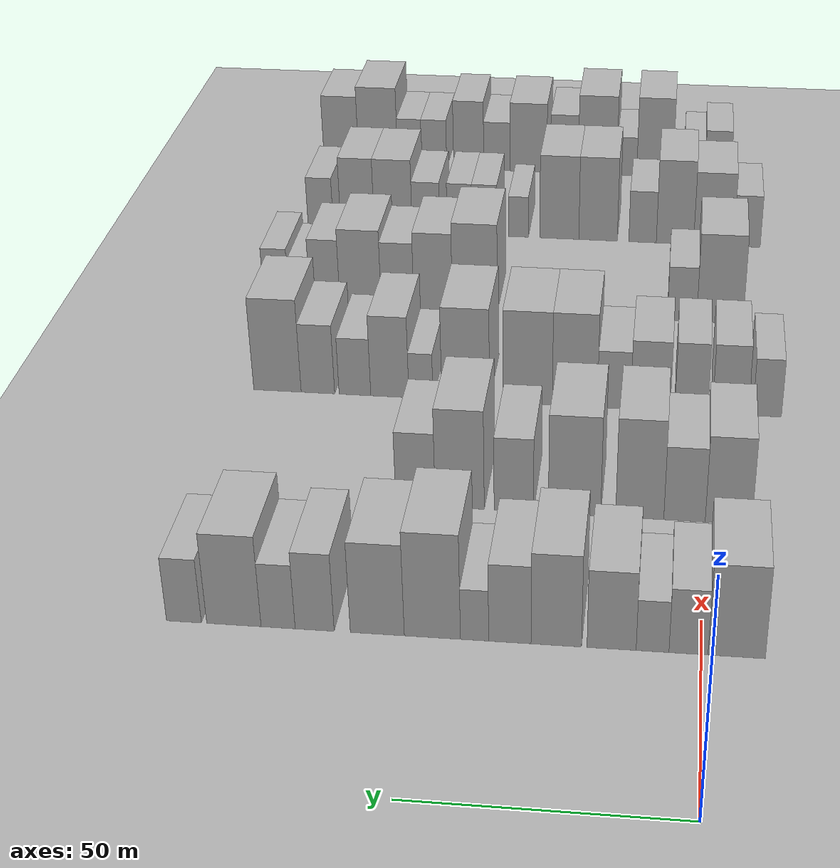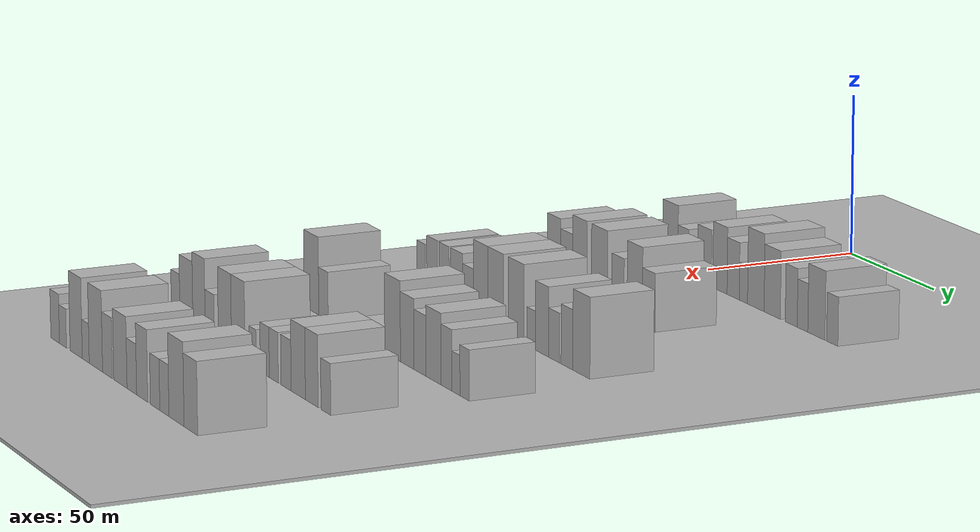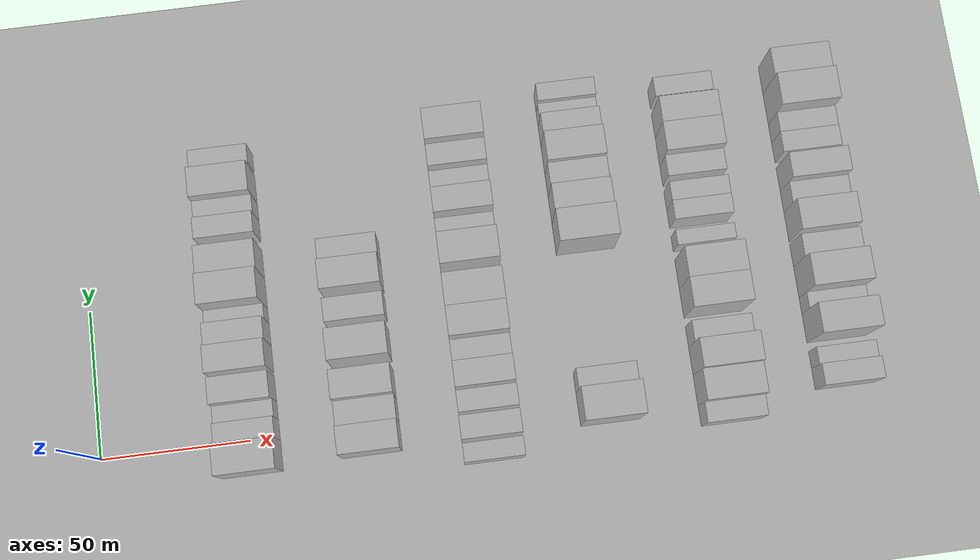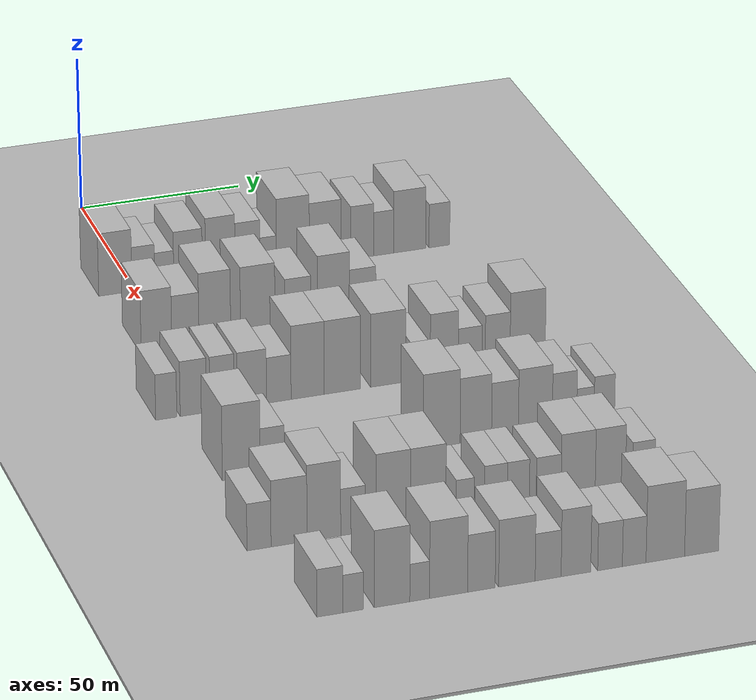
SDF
<sdf version="1.6">
 <world name="default">
  <include><name>ground_plane_1</name><uri>model://HANNAS_ground_plane</uri></include>
  <include>
   <name>ground_plane_2</name>
   <uri>model://HANNAS_ground_plane</uri>
   <pose>100 0 0  0 0 0</pose>
  </include>
  <model name="building_66">
   <static>1</static>
   <pose>50.0000 -6.2142 0 0.000000 0.000000 0.000000</pose>
   <link name="link">
    <pose>0 0 10.50 0 0 0</pose>
    <collision name="collision"><geometry><box><size>20.0000 10.2663 21.0000</size></box></geometry></collision>
    <visual name="visual">
     <cast_shadows>0</cast_shadows>
     <geometry><box><size>20.0000 10.2663 21.0000</size></box></geometry>
     <material>
      <script>
       <uri>model://HANNAS_wall/materials/scripts</uri>
       <uri>model://HANNAS_wall/materials/textures</uri>
       <name>vrc/HANNAS_wall</name>
      </script>
     </material>
    </visual>
   </link>
  </model>
  <model name="building_67">
   <static>1</static>
   <pose>50.0000 2.4209 0 0.000000 0.000000 0.000000</pose>
   <link name="link">
    <pose>0 0 7.50 0 0 0</pose>
    <collision name="collision"><geometry><box><size>20.0000 7.0039 15.0000</size></box></geometry></collision>
    <visual name="visual">
     <cast_shadows>0</cast_shadows>
     <geometry><box><size>20.0000 7.0039 15.0000</size></box></geometry>
     <material>
      <script>
       <uri>model://HANNAS_wall/materials/scripts</uri>
       <uri>model://HANNAS_wall/materials/textures</uri>
       <name>vrc/HANNAS_wall</name>
      </script>
     </material>
    </visual>
   </link>
  </model>
  <model name="building_68">
   <static>1</static>
   <pose>50.0000 8.8791 0 0.000000 0.000000 0.000000</pose>
   <link name="link">
    <pose>0 0 6.00 0 0 0</pose>
    <collision name="collision"><geometry><box><size>20.0000 5.9125 12.0000</size></box></geometry></collision>
    <visual name="visual">
     <cast_shadows>0</cast_shadows>
     <geometry><box><size>20.0000 5.9125 12.0000</size></box></geometry>
     <material>
      <script>
       <uri>model://HANNAS_wall/materials/scripts</uri>
       <uri>model://HANNAS_wall/materials/textures</uri>
       <name>vrc/HANNAS_wall</name>
      </script>
     </material>
    </visual>
   </link>
  </model>
  <model name="building_69">
   <static>1</static>
   <pose>50.0000 16.2761 0 0.000000 0.000000 0.000000</pose>
   <link name="link">
    <pose>0 0 9.00 0 0 0</pose>
    <collision name="collision"><geometry><box><size>20.0000 8.8816 18.0000</size></box></geometry></collision>
    <visual name="visual">
     <cast_shadows>0</cast_shadows>
     <geometry><box><size>20.0000 8.8816 18.0000</size></box></geometry>
     <material>
      <script>
       <uri>model://HANNAS_wall/materials/scripts</uri>
       <uri>model://HANNAS_wall/materials/textures</uri>
       <name>vrc/HANNAS_wall</name>
      </script>
     </material>
    </visual>
   </link>
  </model>
  <model name="building_70">
   <static>1</static>
   <pose>50.0000 26.3061 0 0.000000 0.000000 0.000000</pose>
   <link name="link">
    <pose>0 0 10.50 0 0 0</pose>
    <collision name="collision"><geometry><box><size>20.0000 9.1782 21.0000</size></box></geometry></collision>
    <visual name="visual">
     <cast_shadows>0</cast_shadows>
     <geometry><box><size>20.0000 9.1782 21.0000</size></box></geometry>
     <material>
      <script>
       <uri>model://HANNAS_wall/materials/scripts</uri>
       <uri>model://HANNAS_wall/materials/textures</uri>
       <name>vrc/HANNAS_wall</name>
      </script>
     </material>
    </visual>
   </link>
  </model>
  <model name="building_71">
   <static>1</static>
   <pose>50.0000 34.7607 0 0.000000 0.000000 0.000000</pose>
   <link name="link">
    <pose>0 0 9.00 0 0 0</pose>
    <collision name="collision"><geometry><box><size>20.0000 7.7310 18.0000</size></box></geometry></collision>
    <visual name="visual">
     <cast_shadows>0</cast_shadows>
     <geometry><box><size>20.0000 7.7310 18.0000</size></box></geometry>
     <material>
      <script>
       <uri>model://HANNAS_wall/materials/scripts</uri>
       <uri>model://HANNAS_wall/materials/textures</uri>
       <name>vrc/HANNAS_wall</name>
      </script>
     </material>
    </visual>
   </link>
  </model>
  <model name="building_72">
   <static>1</static>
   <pose>50.0000 41.2127 0 0.000000 0.000000 0.000000</pose>
   <link name="link">
    <pose>0 0 6.00 0 0 0</pose>
    <collision name="collision"><geometry><box><size>20.0000 5.1731 12.0000</size></box></geometry></collision>
    <visual name="visual">
     <cast_shadows>0</cast_shadows>
     <geometry><box><size>20.0000 5.1731 12.0000</size></box></geometry>
     <material>
      <script>
       <uri>model://HANNAS_wall/materials/scripts</uri>
       <uri>model://HANNAS_wall/materials/textures</uri>
       <name>vrc/HANNAS_wall</name>
      </script>
     </material>
    </visual>
   </link>
  </model>
  <model name="building_73">
   <static>1</static>
   <pose>50.0000 48.9597 0 0.000000 0.000000 0.000000</pose>
   <link name="link">
    <pose>0 0 12.00 0 0 0</pose>
    <collision name="collision"><geometry><box><size>20.0000 10.3208 24.0000</size></box></geometry></collision>
    <visual name="visual">
     <cast_shadows>0</cast_shadows>
     <geometry><box><size>20.0000 10.3208 24.0000</size></box></geometry>
     <material>
      <script>
       <uri>model://HANNAS_wall/materials/scripts</uri>
       <uri>model://HANNAS_wall/materials/textures</uri>
       <name>vrc/HANNAS_wall</name>
      </script>
     </material>
    </visual>
   </link>
  </model>
  <model name="building_74">
   <static>1</static>
   <pose>50.0000 59.1140 0 0.000000 0.000000 0.000000</pose>
   <link name="link">
    <pose>0 0 10.50 0 0 0</pose>
    <collision name="collision"><geometry><box><size>20.0000 9.9876 21.0000</size></box></geometry></collision>
    <visual name="visual">
     <cast_shadows>0</cast_shadows>
     <geometry><box><size>20.0000 9.9876 21.0000</size></box></geometry>
     <material>
      <script>
       <uri>model://HANNAS_wall/materials/scripts</uri>
       <uri>model://HANNAS_wall/materials/textures</uri>
       <name>vrc/HANNAS_wall</name>
      </script>
     </material>
    </visual>
   </link>
  </model>
  <model name="building_75">
   <static>1</static>
   <pose>50.0000 70.7340 0 0.000000 0.000000 0.000000</pose>
   <link name="link">
    <pose>0 0 9.00 0 0 0</pose>
    <collision name="collision"><geometry><box><size>20.0000 7.2524 18.0000</size></box></geometry></collision>
    <visual name="visual">
     <cast_shadows>0</cast_shadows>
     <geometry><box><size>20.0000 7.2524 18.0000</size></box></geometry>
     <material>
      <script>
       <uri>model://HANNAS_wall/materials/scripts</uri>
       <uri>model://HANNAS_wall/materials/textures</uri>
       <name>vrc/HANNAS_wall</name>
      </script>
     </material>
    </visual>
   </link>
  </model>
  <model name="building_76">
   <static>1</static>
   <pose>50.0000 77.5407 0 0.000000 0.000000 0.000000</pose>
   <link name="link">
    <pose>0 0 7.50 0 0 0</pose>
    <collision name="collision"><geometry><box><size>20.0000 6.3612 15.0000</size></box></geometry></collision>
    <visual name="visual">
     <cast_shadows>0</cast_shadows>
     <geometry><box><size>20.0000 6.3612 15.0000</size></box></geometry>
     <material>
      <script>
       <uri>model://HANNAS_wall/materials/scripts</uri>
       <uri>model://HANNAS_wall/materials/textures</uri>
       <name>vrc/HANNAS_wall</name>
      </script>
     </material>
    </visual>
   </link>
  </model>
  <model name="building_77">
   <static>1</static>
   <pose>50.0000 85.8204 0 0.000000 0.000000 0.000000</pose>
   <link name="link">
    <pose>0 0 10.50 0 0 0</pose>
    <collision name="collision"><geometry><box><size>20.0000 10.1982 21.0000</size></box></geometry></collision>
    <visual name="visual">
     <cast_shadows>0</cast_shadows>
     <geometry><box><size>20.0000 10.1982 21.0000</size></box></geometry>
     <material>
      <script>
       <uri>model://HANNAS_wall/materials/scripts</uri>
       <uri>model://HANNAS_wall/materials/textures</uri>
       <name>vrc/HANNAS_wall</name>
      </script>
     </material>
    </visual>
   </link>
  </model>
  <model name="building_78">
   <static>1</static>
   <pose>50.0000 95.2017 0 0.000000 0.000000 0.000000</pose>
   <link name="link">
    <pose>0 0 7.50 0 0 0</pose>
    <collision name="collision"><geometry><box><size>20.0000 6.5644 15.0000</size></box></geometry></collision>
    <visual name="visual">
     <cast_shadows>0</cast_shadows>
     <geometry><box><size>20.0000 6.5644 15.0000</size></box></geometry>
     <material>
      <script>
       <uri>model://HANNAS_wall/materials/scripts</uri>
       <uri>model://HANNAS_wall/materials/textures</uri>
       <name>vrc/HANNAS_wall</name>
      </script>
     </material>
    </visual>
   </link>
  </model>
  <model name="building_208">
   <static>1</static>
   <pose>90.0000 -5.1040 0 0.000000 0.000000 0.000000</pose>
   <link name="link">
    <pose>0 0 10.50 0 0 0</pose>
    <collision name="collision"><geometry><box><size>20.0000 9.2687 21.0000</size></box></geometry></collision>
    <visual name="visual">
     <cast_shadows>0</cast_shadows>
     <geometry><box><size>20.0000 9.2687 21.0000</size></box></geometry>
     <material>
      <script>
       <uri>model://HANNAS_wall/materials/scripts</uri>
       <uri>model://HANNAS_wall/materials/textures</uri>
       <name>vrc/HANNAS_wall</name>
      </script>
     </material>
    </visual>
   </link>
  </model>
  <model name="building_209">
   <static>1</static>
   <pose>90.0000 3.6586 0 0.000000 0.000000 0.000000</pose>
   <link name="link">
    <pose>0 0 9.00 0 0 0</pose>
    <collision name="collision"><geometry><box><size>20.0000 8.2565 18.0000</size></box></geometry></collision>
    <visual name="visual">
     <cast_shadows>0</cast_shadows>
     <geometry><box><size>20.0000 8.2565 18.0000</size></box></geometry>
     <material>
      <script>
       <uri>model://HANNAS_wall/materials/scripts</uri>
       <uri>model://HANNAS_wall/materials/textures</uri>
       <name>vrc/HANNAS_wall</name>
      </script>
     </material>
    </visual>
   </link>
  </model>
  <model name="building_210">
   <static>1</static>
   <pose>90.0000 12.6011 0 0.000000 0.000000 0.000000</pose>
   <link name="link">
    <pose>0 0 12.00 0 0 0</pose>
    <collision name="collision"><geometry><box><size>20.0000 9.6284 24.0000</size></box></geometry></collision>
    <visual name="visual">
     <cast_shadows>0</cast_shadows>
     <geometry><box><size>20.0000 9.6284 24.0000</size></box></geometry>
     <material>
      <script>
       <uri>model://HANNAS_wall/materials/scripts</uri>
       <uri>model://HANNAS_wall/materials/textures</uri>
       <name>vrc/HANNAS_wall</name>
      </script>
     </material>
    </visual>
   </link>
  </model>
  <model name="building_211">
   <static>1</static>
   <pose>90.0000 25.6824 0 0.000000 0.000000 0.000000</pose>
   <link name="link">
    <pose>0 0 12.00 0 0 0</pose>
    <collision name="collision"><geometry><box><size>20.0000 10.5342 24.0000</size></box></geometry></collision>
    <visual name="visual">
     <cast_shadows>0</cast_shadows>
     <geometry><box><size>20.0000 10.5342 24.0000</size></box></geometry>
     <material>
      <script>
       <uri>model://HANNAS_wall/materials/scripts</uri>
       <uri>model://HANNAS_wall/materials/textures</uri>
       <name>vrc/HANNAS_wall</name>
      </script>
     </material>
    </visual>
   </link>
  </model>
  <model name="building_212">
   <static>1</static>
   <pose>90.0000 37.9362 0 0.000000 0.000000 0.000000</pose>
   <link name="link">
    <pose>0 0 9.00 0 0 0</pose>
    <collision name="collision"><geometry><box><size>20.0000 7.9736 18.0000</size></box></geometry></collision>
    <visual name="visual">
     <cast_shadows>0</cast_shadows>
     <geometry><box><size>20.0000 7.9736 18.0000</size></box></geometry>
     <material>
      <script>
       <uri>model://HANNAS_wall/materials/scripts</uri>
       <uri>model://HANNAS_wall/materials/textures</uri>
       <name>vrc/HANNAS_wall</name>
      </script>
     </material>
    </visual>
   </link>
  </model>
  <model name="building_213">
   <static>1</static>
   <pose>90.0000 48.9017 0 0.000000 0.000000 0.000000</pose>
   <link name="link">
    <pose>0 0 12.00 0 0 0</pose>
    <collision name="collision"><geometry><box><size>20.0000 9.9573 24.0000</size></box></geometry></collision>
    <visual name="visual">
     <cast_shadows>0</cast_shadows>
     <geometry><box><size>20.0000 9.9573 24.0000</size></box></geometry>
     <material>
      <script>
       <uri>model://HANNAS_wall/materials/scripts</uri>
       <uri>model://HANNAS_wall/materials/textures</uri>
       <name>vrc/HANNAS_wall</name>
      </script>
     </material>
    </visual>
   </link>
  </model>
  <model name="building_214">
   <static>1</static>
   <pose>90.0000 57.9060 0 0.000000 0.000000 0.000000</pose>
   <link name="link">
    <pose>0 0 9.00 0 0 0</pose>
    <collision name="collision"><geometry><box><size>20.0000 8.0514 18.0000</size></box></geometry></collision>
    <visual name="visual">
     <cast_shadows>0</cast_shadows>
     <geometry><box><size>20.0000 8.0514 18.0000</size></box></geometry>
     <material>
      <script>
       <uri>model://HANNAS_wall/materials/scripts</uri>
       <uri>model://HANNAS_wall/materials/textures</uri>
       <name>vrc/HANNAS_wall</name>
      </script>
     </material>
    </visual>
   </link>
  </model>
  <model name="building_345">
   <static>1</static>
   <pose>130.0000 -13.8316 0 0.000000 0.000000 0.000000</pose>
   <link name="link">
    <pose>0 0 7.50 0 0 0</pose>
    <collision name="collision"><geometry><box><size>20.0000 6.2564 15.0000</size></box></geometry></collision>
    <visual name="visual">
     <cast_shadows>0</cast_shadows>
     <geometry><box><size>20.0000 6.2564 15.0000</size></box></geometry>
     <material>
      <script>
       <uri>model://HANNAS_wall/materials/scripts</uri>
       <uri>model://HANNAS_wall/materials/textures</uri>
       <name>vrc/HANNAS_wall</name>
      </script>
     </material>
    </visual>
   </link>
  </model>
  <model name="building_346">
   <static>1</static>
   <pose>130.0000 -5.7993 0 0.000000 0.000000 0.000000</pose>
   <link name="link">
    <pose>0 0 9.00 0 0 0</pose>
    <collision name="collision"><geometry><box><size>20.0000 7.8081 18.0000</size></box></geometry></collision>
    <visual name="visual">
     <cast_shadows>0</cast_shadows>
     <geometry><box><size>20.0000 7.8081 18.0000</size></box></geometry>
     <material>
      <script>
       <uri>model://HANNAS_wall/materials/scripts</uri>
       <uri>model://HANNAS_wall/materials/textures</uri>
       <name>vrc/HANNAS_wall</name>
      </script>
     </material>
    </visual>
   </link>
  </model>
  <model name="building_347">
   <static>1</static>
   <pose>130.0000 2.7097 0 0.000000 0.000000 0.000000</pose>
   <link name="link">
    <pose>0 0 9.00 0 0 0</pose>
    <collision name="collision"><geometry><box><size>20.0000 7.2098 18.0000</size></box></geometry></collision>
    <visual name="visual">
     <cast_shadows>0</cast_shadows>
     <geometry><box><size>20.0000 7.2098 18.0000</size></box></geometry>
     <material>
      <script>
       <uri>model://HANNAS_wall/materials/scripts</uri>
       <uri>model://HANNAS_wall/materials/textures</uri>
       <name>vrc/HANNAS_wall</name>
      </script>
     </material>
    </visual>
   </link>
  </model>
  <model name="building_348">
   <static>1</static>
   <pose>130.0000 11.6475 0 0.000000 0.000000 0.000000</pose>
   <link name="link">
    <pose>0 0 9.00 0 0 0</pose>
    <collision name="collision"><geometry><box><size>20.0000 8.6658 18.0000</size></box></geometry></collision>
    <visual name="visual">
     <cast_shadows>0</cast_shadows>
     <geometry><box><size>20.0000 8.6658 18.0000</size></box></geometry>
     <material>
      <script>
       <uri>model://HANNAS_wall/materials/scripts</uri>
       <uri>model://HANNAS_wall/materials/textures</uri>
       <name>vrc/HANNAS_wall</name>
      </script>
     </material>
    </visual>
   </link>
  </model>
  <model name="building_349">
   <static>1</static>
   <pose>130.0000 19.6461 0 0.000000 0.000000 0.000000</pose>
   <link name="link">
    <pose>0 0 7.50 0 0 0</pose>
    <collision name="collision"><geometry><box><size>20.0000 7.3313 15.0000</size></box></geometry></collision>
    <visual name="visual">
     <cast_shadows>0</cast_shadows>
     <geometry><box><size>20.0000 7.3313 15.0000</size></box></geometry>
     <material>
      <script>
       <uri>model://HANNAS_wall/materials/scripts</uri>
       <uri>model://HANNAS_wall/materials/textures</uri>
       <name>vrc/HANNAS_wall</name>
      </script>
     </material>
    </visual>
   </link>
  </model>
  <model name="building_350">
   <static>1</static>
   <pose>130.0000 28.2954 0 0.000000 0.000000 0.000000</pose>
   <link name="link">
    <pose>0 0 12.00 0 0 0</pose>
    <collision name="collision"><geometry><box><size>20.0000 9.9672 24.0000</size></box></geometry></collision>
    <visual name="visual">
     <cast_shadows>0</cast_shadows>
     <geometry><box><size>20.0000 9.9672 24.0000</size></box></geometry>
     <material>
      <script>
       <uri>model://HANNAS_wall/materials/scripts</uri>
       <uri>model://HANNAS_wall/materials/textures</uri>
       <name>vrc/HANNAS_wall</name>
      </script>
     </material>
    </visual>
   </link>
  </model>
  <model name="building_351">
   <static>1</static>
   <pose>130.0000 38.7564 0 0.000000 0.000000 0.000000</pose>
   <link name="link">
    <pose>0 0 12.00 0 0 0</pose>
    <collision name="collision"><geometry><box><size>20.0000 10.9549 24.0000</size></box></geometry></collision>
    <visual name="visual">
     <cast_shadows>0</cast_shadows>
     <geometry><box><size>20.0000 10.9549 24.0000</size></box></geometry>
     <material>
      <script>
       <uri>model://HANNAS_wall/materials/scripts</uri>
       <uri>model://HANNAS_wall/materials/textures</uri>
       <name>vrc/HANNAS_wall</name>
      </script>
     </material>
    </visual>
   </link>
  </model>
  <model name="building_352">
   <static>1</static>
   <pose>130.0000 52.5645 0 0.000000 0.000000 0.000000</pose>
   <link name="link">
    <pose>0 0 12.00 0 0 0</pose>
    <collision name="collision"><geometry><box><size>20.0000 10.6612 24.0000</size></box></geometry></collision>
    <visual name="visual">
     <cast_shadows>0</cast_shadows>
     <geometry><box><size>20.0000 10.6612 24.0000</size></box></geometry>
     <material>
      <script>
       <uri>model://HANNAS_wall/materials/scripts</uri>
       <uri>model://HANNAS_wall/materials/textures</uri>
       <name>vrc/HANNAS_wall</name>
      </script>
     </material>
    </visual>
   </link>
  </model>
  <model name="building_353">
   <static>1</static>
   <pose>130.0000 62.5911 0 0.000000 0.000000 0.000000</pose>
   <link name="link">
    <pose>0 0 6.00 0 0 0</pose>
    <collision name="collision"><geometry><box><size>20.0000 5.3920 12.0000</size></box></geometry></collision>
    <visual name="visual">
     <cast_shadows>0</cast_shadows>
     <geometry><box><size>20.0000 5.3920 12.0000</size></box></geometry>
     <material>
      <script>
       <uri>model://HANNAS_wall/materials/scripts</uri>
       <uri>model://HANNAS_wall/materials/textures</uri>
       <name>vrc/HANNAS_wall</name>
      </script>
     </material>
    </visual>
   </link>
  </model>
  <model name="building_354">
   <static>1</static>
   <pose>130.0000 69.5810 0 0.000000 0.000000 0.000000</pose>
   <link name="link">
    <pose>0 0 10.50 0 0 0</pose>
    <collision name="collision"><geometry><box><size>20.0000 8.5878 21.0000</size></box></geometry></collision>
    <visual name="visual">
     <cast_shadows>0</cast_shadows>
     <geometry><box><size>20.0000 8.5878 21.0000</size></box></geometry>
     <material>
      <script>
       <uri>model://HANNAS_wall/materials/scripts</uri>
       <uri>model://HANNAS_wall/materials/textures</uri>
       <name>vrc/HANNAS_wall</name>
      </script>
     </material>
    </visual>
   </link>
  </model>
  <model name="building_355">
   <static>1</static>
   <pose>130.0000 77.4540 0 0.000000 0.000000 0.000000</pose>
   <link name="link">
    <pose>0 0 7.50 0 0 0</pose>
    <collision name="collision"><geometry><box><size>20.0000 7.1582 15.0000</size></box></geometry></collision>
    <visual name="visual">
     <cast_shadows>0</cast_shadows>
     <geometry><box><size>20.0000 7.1582 15.0000</size></box></geometry>
     <material>
      <script>
       <uri>model://HANNAS_wall/materials/scripts</uri>
       <uri>model://HANNAS_wall/materials/textures</uri>
       <name>vrc/HANNAS_wall</name>
      </script>
     </material>
    </visual>
   </link>
  </model>
  <model name="building_356">
   <static>1</static>
   <pose>130.0000 85.8312 0 0.000000 0.000000 0.000000</pose>
   <link name="link">
    <pose>0 0 9.00 0 0 0</pose>
    <collision name="collision"><geometry><box><size>20.0000 7.5961 18.0000</size></box></geometry></collision>
    <visual name="visual">
     <cast_shadows>0</cast_shadows>
     <geometry><box><size>20.0000 7.5961 18.0000</size></box></geometry>
     <material>
      <script>
       <uri>model://HANNAS_wall/materials/scripts</uri>
       <uri>model://HANNAS_wall/materials/textures</uri>
       <name>vrc/HANNAS_wall</name>
      </script>
     </material>
    </visual>
   </link>
  </model>
  <model name="building_357">
   <static>1</static>
   <pose>130.0000 95.0210 0 0.000000 0.000000 0.000000</pose>
   <link name="link">
    <pose>0 0 12.00 0 0 0</pose>
    <collision name="collision"><geometry><box><size>20.0000 10.7835 24.0000</size></box></geometry></collision>
    <visual name="visual">
     <cast_shadows>0</cast_shadows>
     <geometry><box><size>20.0000 10.7835 24.0000</size></box></geometry>
     <material>
      <script>
       <uri>model://HANNAS_wall/materials/scripts</uri>
       <uri>model://HANNAS_wall/materials/textures</uri>
       <name>vrc/HANNAS_wall</name>
      </script>
     </material>
    </visual>
   </link>
  </model>
  <model name="building_478">
   <static>1</static>
   <pose>170.0000 -3.7107 0 0.000000 0.000000 0.000000</pose>
   <link name="link">
    <pose>0 0 12.00 0 0 0</pose>
    <collision name="collision"><geometry><box><size>20.0000 11.0374 24.0000</size></box></geometry></collision>
    <visual name="visual">
     <cast_shadows>0</cast_shadows>
     <geometry><box><size>20.0000 11.0374 24.0000</size></box></geometry>
     <material>
      <script>
       <uri>model://HANNAS_wall/materials/scripts</uri>
       <uri>model://HANNAS_wall/materials/textures</uri>
       <name>vrc/HANNAS_wall</name>
      </script>
     </material>
    </visual>
   </link>
  </model>
  <model name="building_479">
   <static>1</static>
   <pose>170.0000 5.3019 0 0.000000 0.000000 0.000000</pose>
   <link name="link">
    <pose>0 0 7.50 0 0 0</pose>
    <collision name="collision"><geometry><box><size>20.0000 6.9877 15.0000</size></box></geometry></collision>
    <visual name="visual">
     <cast_shadows>0</cast_shadows>
     <geometry><box><size>20.0000 6.9877 15.0000</size></box></geometry>
     <material>
      <script>
       <uri>model://HANNAS_wall/materials/scripts</uri>
       <uri>model://HANNAS_wall/materials/textures</uri>
       <name>vrc/HANNAS_wall</name>
      </script>
     </material>
    </visual>
   </link>
  </model>
  <model name="building_480">
   <static>1</static>
   <pose>170.0000 55.1960 0 0.000000 0.000000 0.000000</pose>
   <link name="link">
    <pose>0 0 12.00 0 0 0</pose>
    <collision name="collision"><geometry><box><size>20.0000 10.9335 24.0000</size></box></geometry></collision>
    <visual name="visual">
     <cast_shadows>0</cast_shadows>
     <geometry><box><size>20.0000 10.9335 24.0000</size></box></geometry>
     <material>
      <script>
       <uri>model://HANNAS_wall/materials/scripts</uri>
       <uri>model://HANNAS_wall/materials/textures</uri>
       <name>vrc/HANNAS_wall</name>
      </script>
     </material>
    </visual>
   </link>
  </model>
  <model name="building_481">
   <static>1</static>
   <pose>170.0000 65.3570 0 0.000000 0.000000 0.000000</pose>
   <link name="link">
    <pose>0 0 10.50 0 0 0</pose>
    <collision name="collision"><geometry><box><size>20.0000 9.3886 21.0000</size></box></geometry></collision>
    <visual name="visual">
     <cast_shadows>0</cast_shadows>
     <geometry><box><size>20.0000 9.3886 21.0000</size></box></geometry>
     <material>
      <script>
       <uri>model://HANNAS_wall/materials/scripts</uri>
       <uri>model://HANNAS_wall/materials/textures</uri>
       <name>vrc/HANNAS_wall</name>
      </script>
     </material>
    </visual>
   </link>
  </model>
  <model name="building_482">
   <static>1</static>
   <pose>170.0000 74.0606 0 0.000000 0.000000 0.000000</pose>
   <link name="link">
    <pose>0 0 9.00 0 0 0</pose>
    <collision name="collision"><geometry><box><size>20.0000 8.0186 18.0000</size></box></geometry></collision>
    <visual name="visual">
     <cast_shadows>0</cast_shadows>
     <geometry><box><size>20.0000 8.0186 18.0000</size></box></geometry>
     <material>
      <script>
       <uri>model://HANNAS_wall/materials/scripts</uri>
       <uri>model://HANNAS_wall/materials/textures</uri>
       <name>vrc/HANNAS_wall</name>
      </script>
     </material>
    </visual>
   </link>
  </model>
  <model name="building_483">
   <static>1</static>
   <pose>170.0000 83.1466 0 0.000000 0.000000 0.000000</pose>
   <link name="link">
    <pose>0 0 10.50 0 0 0</pose>
    <collision name="collision"><geometry><box><size>20.0000 10.1533 21.0000</size></box></geometry></collision>
    <visual name="visual">
     <cast_shadows>0</cast_shadows>
     <geometry><box><size>20.0000 10.1533 21.0000</size></box></geometry>
     <material>
      <script>
       <uri>model://HANNAS_wall/materials/scripts</uri>
       <uri>model://HANNAS_wall/materials/textures</uri>
       <name>vrc/HANNAS_wall</name>
      </script>
     </material>
    </visual>
   </link>
  </model>
  <model name="building_484">
   <static>1</static>
   <pose>170.0000 91.8984 0 0.000000 0.000000 0.000000</pose>
   <link name="link">
    <pose>0 0 9.00 0 0 0</pose>
    <collision name="collision"><geometry><box><size>20.0000 7.3505 18.0000</size></box></geometry></collision>
    <visual name="visual">
     <cast_shadows>0</cast_shadows>
     <geometry><box><size>20.0000 7.3505 18.0000</size></box></geometry>
     <material>
      <script>
       <uri>model://HANNAS_wall/materials/scripts</uri>
       <uri>model://HANNAS_wall/materials/textures</uri>
       <name>vrc/HANNAS_wall</name>
      </script>
     </material>
    </visual>
   </link>
  </model>
  <model name="building_485">
   <static>1</static>
   <pose>170.0000 98.1914 0 0.000000 0.000000 0.000000</pose>
   <link name="link">
    <pose>0 0 6.00 0 0 0</pose>
    <collision name="collision"><geometry><box><size>20.0000 5.2354 12.0000</size></box></geometry></collision>
    <visual name="visual">
     <cast_shadows>0</cast_shadows>
     <geometry><box><size>20.0000 5.2354 12.0000</size></box></geometry>
     <material>
      <script>
       <uri>model://HANNAS_wall/materials/scripts</uri>
       <uri>model://HANNAS_wall/materials/textures</uri>
       <name>vrc/HANNAS_wall</name>
      </script>
     </material>
    </visual>
   </link>
  </model>
  <model name="building_486">
   <static>1</static>
   <pose>170.0000 103.9123 0 0.000000 0.000000 0.000000</pose>
   <link name="link">
    <pose>0 0 7.50 0 0 0</pose>
    <collision name="collision"><geometry><box><size>20.0000 6.2065 15.0000</size></box></geometry></collision>
    <visual name="visual">
     <cast_shadows>0</cast_shadows>
     <geometry><box><size>20.0000 6.2065 15.0000</size></box></geometry>
     <material>
      <script>
       <uri>model://HANNAS_wall/materials/scripts</uri>
       <uri>model://HANNAS_wall/materials/textures</uri>
       <name>vrc/HANNAS_wall</name>
      </script>
     </material>
    </visual>
   </link>
  </model>
  <model name="building_615">
   <static>1</static>
   <pose>210.0000 -10.8561 0 0.000000 0.000000 0.000000</pose>
   <link name="link">
    <pose>0 0 7.50 0 0 0</pose>
    <collision name="collision"><geometry><box><size>20.0000 6.8477 15.0000</size></box></geometry></collision>
    <visual name="visual">
     <cast_shadows>0</cast_shadows>
     <geometry><box><size>20.0000 6.8477 15.0000</size></box></geometry>
     <material>
      <script>
       <uri>model://HANNAS_wall/materials/scripts</uri>
       <uri>model://HANNAS_wall/materials/textures</uri>
       <name>vrc/HANNAS_wall</name>
      </script>
     </material>
    </visual>
   </link>
  </model>
  <model name="building_616">
   <static>1</static>
   <pose>210.0000 -2.2864 0 0.000000 0.000000 0.000000</pose>
   <link name="link">
    <pose>0 0 10.50 0 0 0</pose>
    <collision name="collision"><geometry><box><size>20.0000 10.2918 21.0000</size></box></geometry></collision>
    <visual name="visual">
     <cast_shadows>0</cast_shadows>
     <geometry><box><size>20.0000 10.2918 21.0000</size></box></geometry>
     <material>
      <script>
       <uri>model://HANNAS_wall/materials/scripts</uri>
       <uri>model://HANNAS_wall/materials/textures</uri>
       <name>vrc/HANNAS_wall</name>
      </script>
     </material>
    </visual>
   </link>
  </model>
  <model name="building_617">
   <static>1</static>
   <pose>210.0000 7.6790 0 0.000000 0.000000 0.000000</pose>
   <link name="link">
    <pose>0 0 12.00 0 0 0</pose>
    <collision name="collision"><geometry><box><size>20.0000 9.6389 24.0000</size></box></geometry></collision>
    <visual name="visual">
     <cast_shadows>0</cast_shadows>
     <geometry><box><size>20.0000 9.6389 24.0000</size></box></geometry>
     <material>
      <script>
       <uri>model://HANNAS_wall/materials/scripts</uri>
       <uri>model://HANNAS_wall/materials/textures</uri>
       <name>vrc/HANNAS_wall</name>
      </script>
     </material>
    </visual>
   </link>
  </model>
  <model name="building_618">
   <static>1</static>
   <pose>210.0000 16.0559 0 0.000000 0.000000 0.000000</pose>
   <link name="link">
    <pose>0 0 7.50 0 0 0</pose>
    <collision name="collision"><geometry><box><size>20.0000 7.1148 15.0000</size></box></geometry></collision>
    <visual name="visual">
     <cast_shadows>0</cast_shadows>
     <geometry><box><size>20.0000 7.1148 15.0000</size></box></geometry>
     <material>
      <script>
       <uri>model://HANNAS_wall/materials/scripts</uri>
       <uri>model://HANNAS_wall/materials/textures</uri>
       <name>vrc/HANNAS_wall</name>
      </script>
     </material>
    </visual>
   </link>
  </model>
  <model name="building_619">
   <static>1</static>
   <pose>210.0000 27.6237 0 0.000000 0.000000 0.000000</pose>
   <link name="link">
    <pose>0 0 12.00 0 0 0</pose>
    <collision name="collision"><geometry><box><size>20.0000 10.0210 24.0000</size></box></geometry></collision>
    <visual name="visual">
     <cast_shadows>0</cast_shadows>
     <geometry><box><size>20.0000 10.0210 24.0000</size></box></geometry>
     <material>
      <script>
       <uri>model://HANNAS_wall/materials/scripts</uri>
       <uri>model://HANNAS_wall/materials/textures</uri>
       <name>vrc/HANNAS_wall</name>
      </script>
     </material>
    </visual>
   </link>
  </model>
  <model name="building_620">
   <static>1</static>
   <pose>210.0000 37.7310 0 0.000000 0.000000 0.000000</pose>
   <link name="link">
    <pose>0 0 12.00 0 0 0</pose>
    <collision name="collision"><geometry><box><size>20.0000 10.1935 24.0000</size></box></geometry></collision>
    <visual name="visual">
     <cast_shadows>0</cast_shadows>
     <geometry><box><size>20.0000 10.1935 24.0000</size></box></geometry>
     <material>
      <script>
       <uri>model://HANNAS_wall/materials/scripts</uri>
       <uri>model://HANNAS_wall/materials/textures</uri>
       <name>vrc/HANNAS_wall</name>
      </script>
     </material>
    </visual>
   </link>
  </model>
  <model name="building_621">
   <static>1</static>
   <pose>210.0000 48.4473 0 0.000000 0.000000 0.000000</pose>
   <link name="link">
    <pose>0 0 6.00 0 0 0</pose>
    <collision name="collision"><geometry><box><size>20.0000 5.2392 12.0000</size></box></geometry></collision>
    <visual name="visual">
     <cast_shadows>0</cast_shadows>
     <geometry><box><size>20.0000 5.2392 12.0000</size></box></geometry>
     <material>
      <script>
       <uri>model://HANNAS_wall/materials/scripts</uri>
       <uri>model://HANNAS_wall/materials/textures</uri>
       <name>vrc/HANNAS_wall</name>
      </script>
     </material>
    </visual>
   </link>
  </model>
  <model name="building_622">
   <static>1</static>
   <pose>210.0000 57.3634 0 0.000000 0.000000 0.000000</pose>
   <link name="link">
    <pose>0 0 7.50 0 0 0</pose>
    <collision name="collision"><geometry><box><size>20.0000 6.5930 15.0000</size></box></geometry></collision>
    <visual name="visual">
     <cast_shadows>0</cast_shadows>
     <geometry><box><size>20.0000 6.5930 15.0000</size></box></geometry>
     <material>
      <script>
       <uri>model://HANNAS_wall/materials/scripts</uri>
       <uri>model://HANNAS_wall/materials/textures</uri>
       <name>vrc/HANNAS_wall</name>
      </script>
     </material>
    </visual>
   </link>
  </model>
  <model name="building_623">
   <static>1</static>
   <pose>210.0000 63.9002 0 0.000000 0.000000 0.000000</pose>
   <link name="link">
    <pose>0 0 7.50 0 0 0</pose>
    <collision name="collision"><geometry><box><size>20.0000 6.4807 15.0000</size></box></geometry></collision>
    <visual name="visual">
     <cast_shadows>0</cast_shadows>
     <geometry><box><size>20.0000 6.4807 15.0000</size></box></geometry>
     <material>
      <script>
       <uri>model://HANNAS_wall/materials/scripts</uri>
       <uri>model://HANNAS_wall/materials/textures</uri>
       <name>vrc/HANNAS_wall</name>
      </script>
     </material>
    </visual>
   </link>
  </model>
  <model name="building_624">
   <static>1</static>
   <pose>210.0000 72.7773 0 0.000000 0.000000 0.000000</pose>
   <link name="link">
    <pose>0 0 7.50 0 0 0</pose>
    <collision name="collision"><geometry><box><size>20.0000 7.2734 15.0000</size></box></geometry></collision>
    <visual name="visual">
     <cast_shadows>0</cast_shadows>
     <geometry><box><size>20.0000 7.2734 15.0000</size></box></geometry>
     <material>
      <script>
       <uri>model://HANNAS_wall/materials/scripts</uri>
       <uri>model://HANNAS_wall/materials/textures</uri>
       <name>vrc/HANNAS_wall</name>
      </script>
     </material>
    </visual>
   </link>
  </model>
  <model name="building_625">
   <static>1</static>
   <pose>210.0000 81.4391 0 0.000000 0.000000 0.000000</pose>
   <link name="link">
    <pose>0 0 10.50 0 0 0</pose>
    <collision name="collision"><geometry><box><size>20.0000 10.0503 21.0000</size></box></geometry></collision>
    <visual name="visual">
     <cast_shadows>0</cast_shadows>
     <geometry><box><size>20.0000 10.0503 21.0000</size></box></geometry>
     <material>
      <script>
       <uri>model://HANNAS_wall/materials/scripts</uri>
       <uri>model://HANNAS_wall/materials/textures</uri>
       <name>vrc/HANNAS_wall</name>
      </script>
     </material>
    </visual>
   </link>
  </model>
  <model name="building_626">
   <static>1</static>
   <pose>210.0000 90.9266 0 0.000000 0.000000 0.000000</pose>
   <link name="link">
    <pose>0 0 10.50 0 0 0</pose>
    <collision name="collision"><geometry><box><size>20.0000 8.9247 21.0000</size></box></geometry></collision>
    <visual name="visual">
     <cast_shadows>0</cast_shadows>
     <geometry><box><size>20.0000 8.9247 21.0000</size></box></geometry>
     <material>
      <script>
       <uri>model://HANNAS_wall/materials/scripts</uri>
       <uri>model://HANNAS_wall/materials/textures</uri>
       <name>vrc/HANNAS_wall</name>
      </script>
     </material>
    </visual>
   </link>
  </model>
  <model name="building_627">
   <static>1</static>
   <pose>210.0000 100.7493 0 0.000000 0.000000 0.000000</pose>
   <link name="link">
    <pose>0 0 7.50 0 0 0</pose>
    <collision name="collision"><geometry><box><size>20.0000 6.7205 15.0000</size></box></geometry></collision>
    <visual name="visual">
     <cast_shadows>0</cast_shadows>
     <geometry><box><size>20.0000 6.7205 15.0000</size></box></geometry>
     <material>
      <script>
       <uri>model://HANNAS_wall/materials/scripts</uri>
       <uri>model://HANNAS_wall/materials/textures</uri>
       <name>vrc/HANNAS_wall</name>
      </script>
     </material>
    </visual>
   </link>
  </model>
  <model name="building_754">
   <static>1</static>
   <pose>250.0000 -3.4432 0 0.000000 0.000000 0.000000</pose>
   <link name="link">
    <pose>0 0 7.50 0 0 0</pose>
    <collision name="collision"><geometry><box><size>20.0000 7.2256 15.0000</size></box></geometry></collision>
    <visual name="visual">
     <cast_shadows>0</cast_shadows>
     <geometry><box><size>20.0000 7.2256 15.0000</size></box></geometry>
     <material>
      <script>
       <uri>model://HANNAS_wall/materials/scripts</uri>
       <uri>model://HANNAS_wall/materials/textures</uri>
       <name>vrc/HANNAS_wall</name>
      </script>
     </material>
    </visual>
   </link>
  </model>
  <model name="building_755">
   <static>1</static>
   <pose>250.0000 3.0851 0 0.000000 0.000000 0.000000</pose>
   <link name="link">
    <pose>0 0 6.00 0 0 0</pose>
    <collision name="collision"><geometry><box><size>20.0000 5.8309 12.0000</size></box></geometry></collision>
    <visual name="visual">
     <cast_shadows>0</cast_shadows>
     <geometry><box><size>20.0000 5.8309 12.0000</size></box></geometry>
     <material>
      <script>
       <uri>model://HANNAS_wall/materials/scripts</uri>
       <uri>model://HANNAS_wall/materials/textures</uri>
       <name>vrc/HANNAS_wall</name>
      </script>
     </material>
    </visual>
   </link>
  </model>
  <model name="building_756">
   <static>1</static>
   <pose>250.0000 14.0137 0 0.000000 0.000000 0.000000</pose>
   <link name="link">
    <pose>0 0 12.00 0 0 0</pose>
    <collision name="collision"><geometry><box><size>20.0000 10.0263 24.0000</size></box></geometry></collision>
    <visual name="visual">
     <cast_shadows>0</cast_shadows>
     <geometry><box><size>20.0000 10.0263 24.0000</size></box></geometry>
     <material>
      <script>
       <uri>model://HANNAS_wall/materials/scripts</uri>
       <uri>model://HANNAS_wall/materials/textures</uri>
       <name>vrc/HANNAS_wall</name>
      </script>
     </material>
    </visual>
   </link>
  </model>
  <model name="building_757">
   <static>1</static>
   <pose>250.0000 21.8210 0 0.000000 0.000000 0.000000</pose>
   <link name="link">
    <pose>0 0 6.00 0 0 0</pose>
    <collision name="collision"><geometry><box><size>20.0000 5.5884 12.0000</size></box></geometry></collision>
    <visual name="visual">
     <cast_shadows>0</cast_shadows>
     <geometry><box><size>20.0000 5.5884 12.0000</size></box></geometry>
     <material>
      <script>
       <uri>model://HANNAS_wall/materials/scripts</uri>
       <uri>model://HANNAS_wall/materials/textures</uri>
       <name>vrc/HANNAS_wall</name>
      </script>
     </material>
    </visual>
   </link>
  </model>
  <model name="building_758">
   <static>1</static>
   <pose>250.0000 29.9983 0 0.000000 0.000000 0.000000</pose>
   <link name="link">
    <pose>0 0 12.00 0 0 0</pose>
    <collision name="collision"><geometry><box><size>20.0000 10.7662 24.0000</size></box></geometry></collision>
    <visual name="visual">
     <cast_shadows>0</cast_shadows>
     <geometry><box><size>20.0000 10.7662 24.0000</size></box></geometry>
     <material>
      <script>
       <uri>model://HANNAS_wall/materials/scripts</uri>
       <uri>model://HANNAS_wall/materials/textures</uri>
       <name>vrc/HANNAS_wall</name>
      </script>
     </material>
    </visual>
   </link>
  </model>
  <model name="building_759">
   <static>1</static>
   <pose>250.0000 39.2956 0 0.000000 0.000000 0.000000</pose>
   <link name="link">
    <pose>0 0 9.00 0 0 0</pose>
    <collision name="collision"><geometry><box><size>20.0000 7.8283 18.0000</size></box></geometry></collision>
    <visual name="visual">
     <cast_shadows>0</cast_shadows>
     <geometry><box><size>20.0000 7.8283 18.0000</size></box></geometry>
     <material>
      <script>
       <uri>model://HANNAS_wall/materials/scripts</uri>
       <uri>model://HANNAS_wall/materials/textures</uri>
       <name>vrc/HANNAS_wall</name>
      </script>
     </material>
    </visual>
   </link>
  </model>
  <model name="building_760">
   <static>1</static>
   <pose>250.0000 49.4112 0 0.000000 0.000000 0.000000</pose>
   <link name="link">
    <pose>0 0 10.50 0 0 0</pose>
    <collision name="collision"><geometry><box><size>20.0000 10.4029 21.0000</size></box></geometry></collision>
    <visual name="visual">
     <cast_shadows>0</cast_shadows>
     <geometry><box><size>20.0000 10.4029 21.0000</size></box></geometry>
     <material>
      <script>
       <uri>model://HANNAS_wall/materials/scripts</uri>
       <uri>model://HANNAS_wall/materials/textures</uri>
       <name>vrc/HANNAS_wall</name>
      </script>
     </material>
    </visual>
   </link>
  </model>
  <model name="building_761">
   <static>1</static>
   <pose>250.0000 58.3201 0 0.000000 0.000000 0.000000</pose>
   <link name="link">
    <pose>0 0 7.50 0 0 0</pose>
    <collision name="collision"><geometry><box><size>20.0000 7.4149 15.0000</size></box></geometry></collision>
    <visual name="visual">
     <cast_shadows>0</cast_shadows>
     <geometry><box><size>20.0000 7.4149 15.0000</size></box></geometry>
     <material>
      <script>
       <uri>model://HANNAS_wall/materials/scripts</uri>
       <uri>model://HANNAS_wall/materials/textures</uri>
       <name>vrc/HANNAS_wall</name>
      </script>
     </material>
    </visual>
   </link>
  </model>
  <model name="building_762">
   <static>1</static>
   <pose>250.0000 66.2844 0 0.000000 0.000000 0.000000</pose>
   <link name="link">
    <pose>0 0 10.50 0 0 0</pose>
    <collision name="collision"><geometry><box><size>20.0000 8.5137 21.0000</size></box></geometry></collision>
    <visual name="visual">
     <cast_shadows>0</cast_shadows>
     <geometry><box><size>20.0000 8.5137 21.0000</size></box></geometry>
     <material>
      <script>
       <uri>model://HANNAS_wall/materials/scripts</uri>
       <uri>model://HANNAS_wall/materials/textures</uri>
       <name>vrc/HANNAS_wall</name>
      </script>
     </material>
    </visual>
   </link>
  </model>
  <model name="building_763">
   <static>1</static>
   <pose>250.0000 76.0891 0 0.000000 0.000000 0.000000</pose>
   <link name="link">
    <pose>0 0 7.50 0 0 0</pose>
    <collision name="collision"><geometry><box><size>20.0000 7.0958 15.0000</size></box></geometry></collision>
    <visual name="visual">
     <cast_shadows>0</cast_shadows>
     <geometry><box><size>20.0000 7.0958 15.0000</size></box></geometry>
     <material>
      <script>
       <uri>model://HANNAS_wall/materials/scripts</uri>
       <uri>model://HANNAS_wall/materials/textures</uri>
       <name>vrc/HANNAS_wall</name>
      </script>
     </material>
    </visual>
   </link>
  </model>
  <model name="building_764">
   <static>1</static>
   <pose>250.0000 83.0534 0 0.000000 0.000000 0.000000</pose>
   <link name="link">
    <pose>0 0 7.50 0 0 0</pose>
    <collision name="collision"><geometry><box><size>20.0000 6.8328 15.0000</size></box></geometry></collision>
    <visual name="visual">
     <cast_shadows>0</cast_shadows>
     <geometry><box><size>20.0000 6.8328 15.0000</size></box></geometry>
     <material>
      <script>
       <uri>model://HANNAS_wall/materials/scripts</uri>
       <uri>model://HANNAS_wall/materials/textures</uri>
       <name>vrc/HANNAS_wall</name>
      </script>
     </material>
    </visual>
   </link>
  </model>
  <model name="building_765">
   <static>1</static>
   <pose>250.0000 92.0472 0 0.000000 0.000000 0.000000</pose>
   <link name="link">
    <pose>0 0 12.00 0 0 0</pose>
    <collision name="collision"><geometry><box><size>20.0000 11.1550 24.0000</size></box></geometry></collision>
    <visual name="visual">
     <cast_shadows>0</cast_shadows>
     <geometry><box><size>20.0000 11.1550 24.0000</size></box></geometry>
     <material>
      <script>
       <uri>model://HANNAS_wall/materials/scripts</uri>
       <uri>model://HANNAS_wall/materials/textures</uri>
       <name>vrc/HANNAS_wall</name>
      </script>
     </material>
    </visual>
   </link>
  </model>
  <model name="building_766">
   <static>1</static>
   <pose>250.0000 102.5761 0 0.000000 0.000000 0.000000</pose>
   <link name="link">
    <pose>0 0 10.50 0 0 0</pose>
    <collision name="collision"><geometry><box><size>20.0000 9.9027 21.0000</size></box></geometry></collision>
    <visual name="visual">
     <cast_shadows>0</cast_shadows>
     <geometry><box><size>20.0000 9.9027 21.0000</size></box></geometry>
     <material>
      <script>
       <uri>model://HANNAS_wall/materials/scripts</uri>
       <uri>model://HANNAS_wall/materials/textures</uri>
       <name>vrc/HANNAS_wall</name>
      </script>
     </material>
    </visual>
   </link>
  </model>
 </world>
</sdf>
